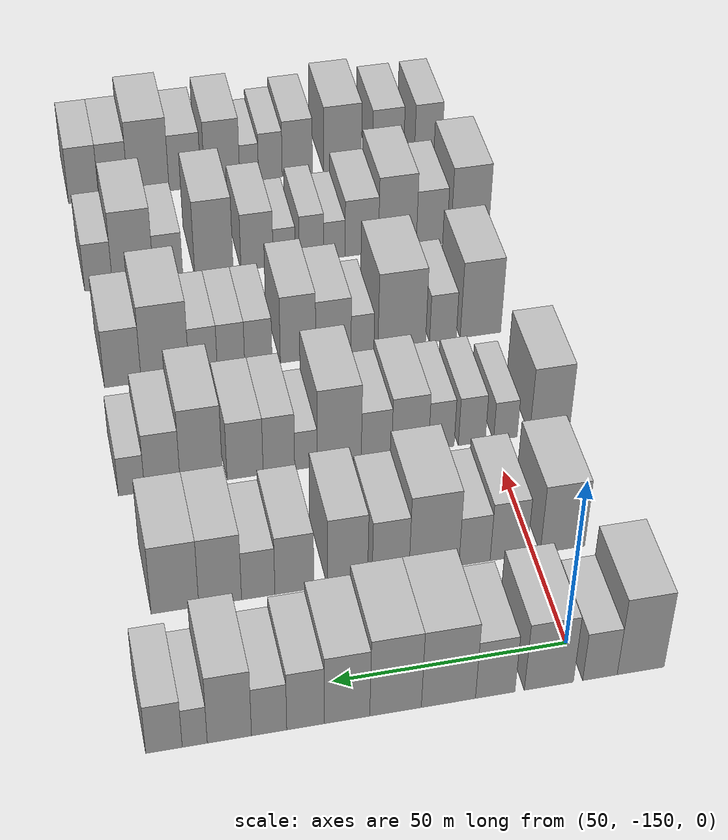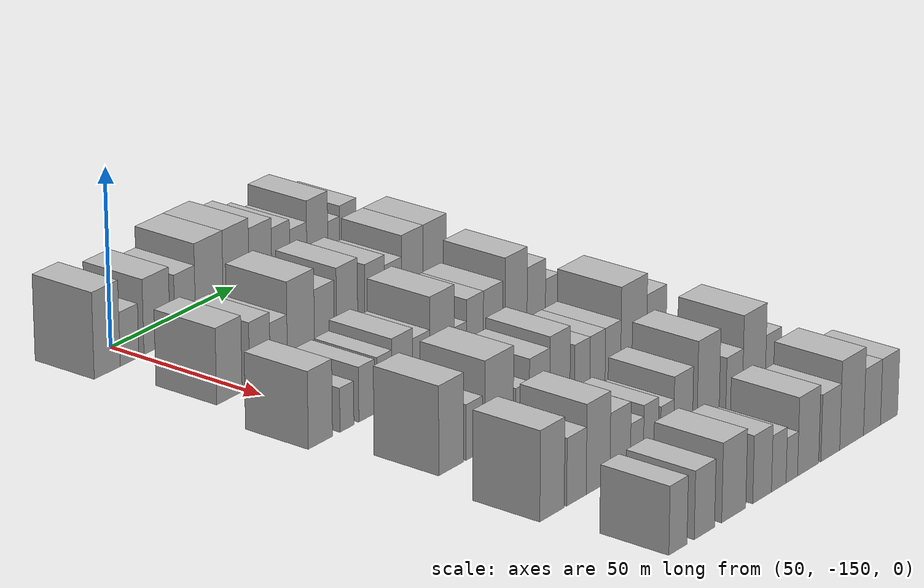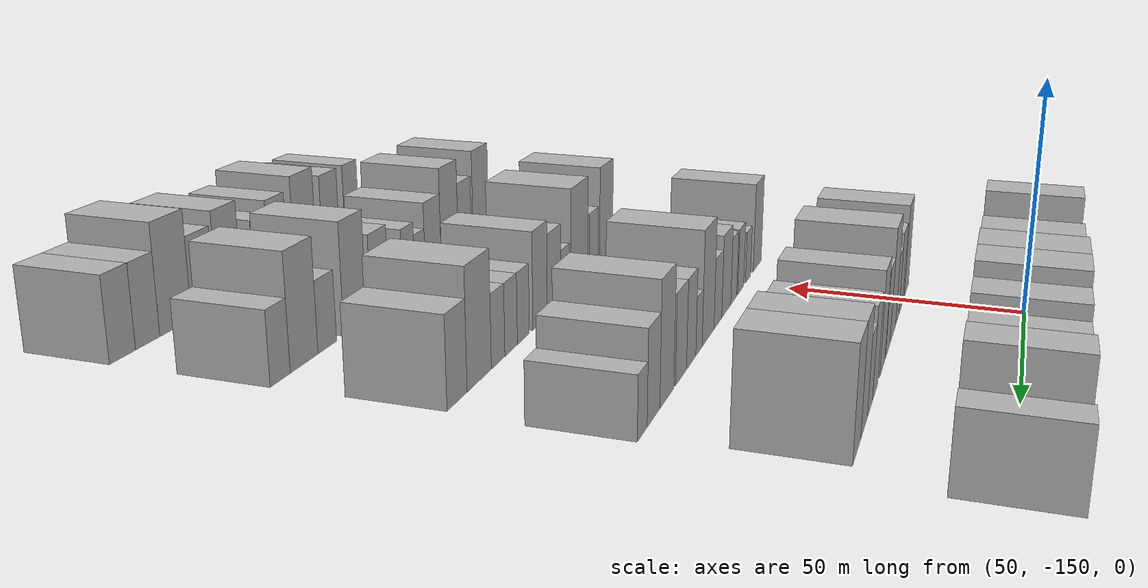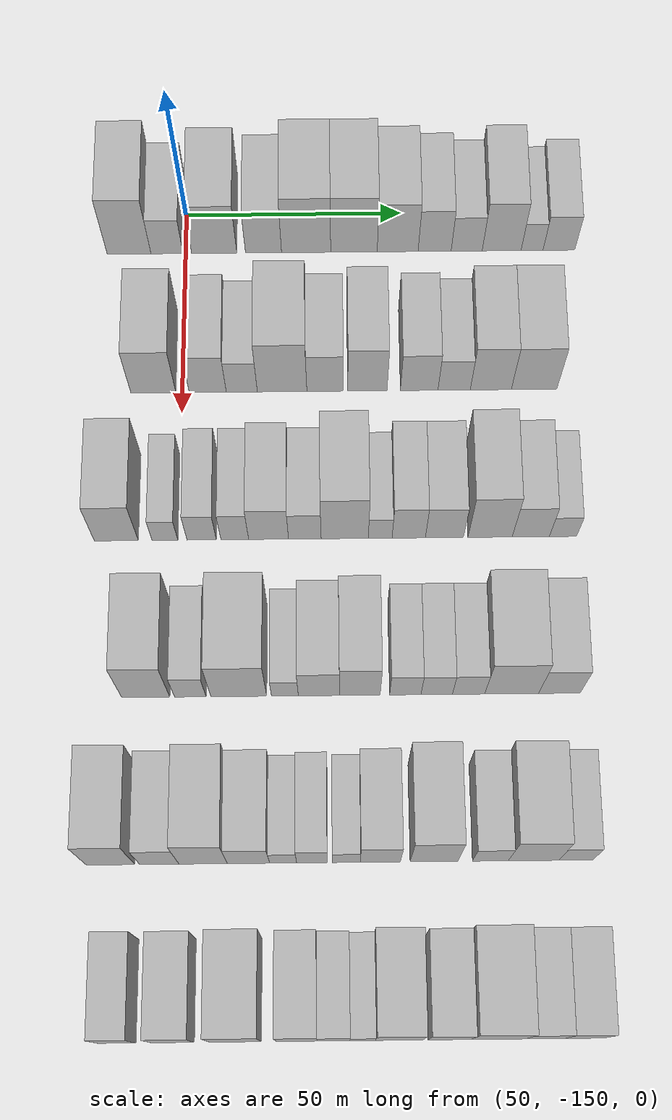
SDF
<sdf version="1.6">
 <world name="default">
  <model name="building_45">
   <static>1</static>
   <pose>50.0000 -163.0519 0 0.000000 0.000000 0.000000</pose>
   <link name="link">
    <pose>0 0 12.00 0 0 0</pose>
    <collision name="collision"><geometry><box><size>20.0000 10.1255 24.0000</size></box></geometry></collision>
    <visual name="visual">
     <cast_shadows>0</cast_shadows>
     <geometry><box><size>20.0000 10.1255 24.0000</size></box></geometry>
     <material>
      <script>
       <uri>model://HANNAS_wall/materials/scripts</uri>
       <uri>model://HANNAS_wall/materials/textures</uri>
       <name>vrc/HANNAS_wall</name>
      </script>
     </material>
    </visual>
   </link>
  </model>
  <model name="building_46">
   <static>1</static>
   <pose>50.0000 -154.2886 0 0.000000 0.000000 0.000000</pose>
   <link name="link">
    <pose>0 0 7.50 0 0 0</pose>
    <collision name="collision"><geometry><box><size>20.0000 7.4011 15.0000</size></box></geometry></collision>
    <visual name="visual">
     <cast_shadows>0</cast_shadows>
     <geometry><box><size>20.0000 7.4011 15.0000</size></box></geometry>
     <material>
      <script>
       <uri>model://HANNAS_wall/materials/scripts</uri>
       <uri>model://HANNAS_wall/materials/textures</uri>
       <name>vrc/HANNAS_wall</name>
      </script>
     </material>
    </visual>
   </link>
  </model>
  <model name="building_47">
   <static>1</static>
   <pose>50.0000 -143.3607 0 0.000000 0.000000 0.000000</pose>
   <link name="link">
    <pose>0 0 10.50 0 0 0</pose>
    <collision name="collision"><geometry><box><size>20.0000 10.4546 21.0000</size></box></geometry></collision>
    <visual name="visual">
     <cast_shadows>0</cast_shadows>
     <geometry><box><size>20.0000 10.4546 21.0000</size></box></geometry>
     <material>
      <script>
       <uri>model://HANNAS_wall/materials/scripts</uri>
       <uri>model://HANNAS_wall/materials/textures</uri>
       <name>vrc/HANNAS_wall</name>
      </script>
     </material>
    </visual>
   </link>
  </model>
  <model name="building_48">
   <static>1</static>
   <pose>50.0000 -131.9639 0 0.000000 0.000000 0.000000</pose>
   <link name="link">
    <pose>0 0 9.00 0 0 0</pose>
    <collision name="collision"><geometry><box><size>20.0000 8.3391 18.0000</size></box></geometry></collision>
    <visual name="visual">
     <cast_shadows>0</cast_shadows>
     <geometry><box><size>20.0000 8.3391 18.0000</size></box></geometry>
     <material>
      <script>
       <uri>model://HANNAS_wall/materials/scripts</uri>
       <uri>model://HANNAS_wall/materials/textures</uri>
       <name>vrc/HANNAS_wall</name>
      </script>
     </material>
    </visual>
   </link>
  </model>
  <model name="building_49">
   <static>1</static>
   <pose>50.0000 -122.1106 0 0.000000 0.000000 0.000000</pose>
   <link name="link">
    <pose>0 0 12.00 0 0 0</pose>
    <collision name="collision"><geometry><box><size>20.0000 11.3675 24.0000</size></box></geometry></collision>
    <visual name="visual">
     <cast_shadows>0</cast_shadows>
     <geometry><box><size>20.0000 11.3675 24.0000</size></box></geometry>
     <material>
      <script>
       <uri>model://HANNAS_wall/materials/scripts</uri>
       <uri>model://HANNAS_wall/materials/textures</uri>
       <name>vrc/HANNAS_wall</name>
      </script>
     </material>
    </visual>
   </link>
  </model>
  <model name="building_50">
   <static>1</static>
   <pose>50.0000 -111.0496 0 0.000000 0.000000 0.000000</pose>
   <link name="link">
    <pose>0 0 12.00 0 0 0</pose>
    <collision name="collision"><geometry><box><size>20.0000 10.7545 24.0000</size></box></geometry></collision>
    <visual name="visual">
     <cast_shadows>0</cast_shadows>
     <geometry><box><size>20.0000 10.7545 24.0000</size></box></geometry>
     <material>
      <script>
       <uri>model://HANNAS_wall/materials/scripts</uri>
       <uri>model://HANNAS_wall/materials/textures</uri>
       <name>vrc/HANNAS_wall</name>
      </script>
     </material>
    </visual>
   </link>
  </model>
  <model name="building_51">
   <static>1</static>
   <pose>50.0000 -100.9385 0 0.000000 0.000000 0.000000</pose>
   <link name="link">
    <pose>0 0 10.50 0 0 0</pose>
    <collision name="collision"><geometry><box><size>20.0000 9.4676 21.0000</size></box></geometry></collision>
    <visual name="visual">
     <cast_shadows>0</cast_shadows>
     <geometry><box><size>20.0000 9.4676 21.0000</size></box></geometry>
     <material>
      <script>
       <uri>model://HANNAS_wall/materials/scripts</uri>
       <uri>model://HANNAS_wall/materials/textures</uri>
       <name>vrc/HANNAS_wall</name>
      </script>
     </material>
    </visual>
   </link>
  </model>
  <model name="building_52">
   <static>1</static>
   <pose>50.0000 -92.3788 0 0.000000 0.000000 0.000000</pose>
   <link name="link">
    <pose>0 0 9.00 0 0 0</pose>
    <collision name="collision"><geometry><box><size>20.0000 7.6519 18.0000</size></box></geometry></collision>
    <visual name="visual">
     <cast_shadows>0</cast_shadows>
     <geometry><box><size>20.0000 7.6519 18.0000</size></box></geometry>
     <material>
      <script>
       <uri>model://HANNAS_wall/materials/scripts</uri>
       <uri>model://HANNAS_wall/materials/textures</uri>
       <name>vrc/HANNAS_wall</name>
      </script>
     </material>
    </visual>
   </link>
  </model>
  <model name="building_53">
   <static>1</static>
   <pose>50.0000 -84.9520 0 0.000000 0.000000 0.000000</pose>
   <link name="link">
    <pose>0 0 7.50 0 0 0</pose>
    <collision name="collision"><geometry><box><size>20.0000 7.2017 15.0000</size></box></geometry></collision>
    <visual name="visual">
     <cast_shadows>0</cast_shadows>
     <geometry><box><size>20.0000 7.2017 15.0000</size></box></geometry>
     <material>
      <script>
       <uri>model://HANNAS_wall/materials/scripts</uri>
       <uri>model://HANNAS_wall/materials/textures</uri>
       <name>vrc/HANNAS_wall</name>
      </script>
     </material>
    </visual>
   </link>
  </model>
  <model name="building_54">
   <static>1</static>
   <pose>50.0000 -76.8477 0 0.000000 0.000000 0.000000</pose>
   <link name="link">
    <pose>0 0 10.50 0 0 0</pose>
    <collision name="collision"><geometry><box><size>20.0000 9.0068 21.0000</size></box></geometry></collision>
    <visual name="visual">
     <cast_shadows>0</cast_shadows>
     <geometry><box><size>20.0000 9.0068 21.0000</size></box></geometry>
     <material>
      <script>
       <uri>model://HANNAS_wall/materials/scripts</uri>
       <uri>model://HANNAS_wall/materials/textures</uri>
       <name>vrc/HANNAS_wall</name>
      </script>
     </material>
    </visual>
   </link>
  </model>
  <model name="building_55">
   <static>1</static>
   <pose>50.0000 -69.8082 0 0.000000 0.000000 0.000000</pose>
   <link name="link">
    <pose>0 0 6.00 0 0 0</pose>
    <collision name="collision"><geometry><box><size>20.0000 5.0724 12.0000</size></box></geometry></collision>
    <visual name="visual">
     <cast_shadows>0</cast_shadows>
     <geometry><box><size>20.0000 5.0724 12.0000</size></box></geometry>
     <material>
      <script>
       <uri>model://HANNAS_wall/materials/scripts</uri>
       <uri>model://HANNAS_wall/materials/textures</uri>
       <name>vrc/HANNAS_wall</name>
      </script>
     </material>
    </visual>
   </link>
  </model>
  <model name="building_56">
   <static>1</static>
   <pose>50.0000 -63.5897 0 0.000000 0.000000 0.000000</pose>
   <link name="link">
    <pose>0 0 7.50 0 0 0</pose>
    <collision name="collision"><geometry><box><size>20.0000 7.3645 15.0000</size></box></geometry></collision>
    <visual name="visual">
     <cast_shadows>0</cast_shadows>
     <geometry><box><size>20.0000 7.3645 15.0000</size></box></geometry>
     <material>
      <script>
       <uri>model://HANNAS_wall/materials/scripts</uri>
       <uri>model://HANNAS_wall/materials/textures</uri>
       <name>vrc/HANNAS_wall</name>
      </script>
     </material>
    </visual>
   </link>
  </model>
  <model name="building_176">
   <static>1</static>
   <pose>85.0000 -156.5332 0 0.000000 0.000000 0.000000</pose>
   <link name="link">
    <pose>0 0 10.50 0 0 0</pose>
    <collision name="collision"><geometry><box><size>20.0000 10.1084 21.0000</size></box></geometry></collision>
    <visual name="visual">
     <cast_shadows>0</cast_shadows>
     <geometry><box><size>20.0000 10.1084 21.0000</size></box></geometry>
     <material>
      <script>
       <uri>model://HANNAS_wall/materials/scripts</uri>
       <uri>model://HANNAS_wall/materials/textures</uri>
       <name>vrc/HANNAS_wall</name>
      </script>
     </material>
    </visual>
   </link>
  </model>
  <model name="building_177">
   <static>1</static>
   <pose>85.0000 -144.3210 0 0.000000 0.000000 0.000000</pose>
   <link name="link">
    <pose>0 0 9.00 0 0 0</pose>
    <collision name="collision"><geometry><box><size>20.0000 8.3161 18.0000</size></box></geometry></collision>
    <visual name="visual">
     <cast_shadows>0</cast_shadows>
     <geometry><box><size>20.0000 8.3161 18.0000</size></box></geometry>
     <material>
      <script>
       <uri>model://HANNAS_wall/materials/scripts</uri>
       <uri>model://HANNAS_wall/materials/textures</uri>
       <name>vrc/HANNAS_wall</name>
      </script>
     </material>
    </visual>
   </link>
  </model>
  <model name="building_178">
   <static>1</static>
   <pose>85.0000 -136.6722 0 0.000000 0.000000 0.000000</pose>
   <link name="link">
    <pose>0 0 7.50 0 0 0</pose>
    <collision name="collision"><geometry><box><size>20.0000 6.9815 15.0000</size></box></geometry></collision>
    <visual name="visual">
     <cast_shadows>0</cast_shadows>
     <geometry><box><size>20.0000 6.9815 15.0000</size></box></geometry>
     <material>
      <script>
       <uri>model://HANNAS_wall/materials/scripts</uri>
       <uri>model://HANNAS_wall/materials/textures</uri>
       <name>vrc/HANNAS_wall</name>
      </script>
     </material>
    </visual>
   </link>
  </model>
  <model name="building_179">
   <static>1</static>
   <pose>85.0000 -127.6199 0 0.000000 0.000000 0.000000</pose>
   <link name="link">
    <pose>0 0 12.00 0 0 0</pose>
    <collision name="collision"><geometry><box><size>20.0000 11.1229 24.0000</size></box></geometry></collision>
    <visual name="visual">
     <cast_shadows>0</cast_shadows>
     <geometry><box><size>20.0000 11.1229 24.0000</size></box></geometry>
     <material>
      <script>
       <uri>model://HANNAS_wall/materials/scripts</uri>
       <uri>model://HANNAS_wall/materials/textures</uri>
       <name>vrc/HANNAS_wall</name>
      </script>
     </material>
    </visual>
   </link>
  </model>
  <model name="building_180">
   <static>1</static>
   <pose>85.0000 -117.9716 0 0.000000 0.000000 0.000000</pose>
   <link name="link">
    <pose>0 0 9.00 0 0 0</pose>
    <collision name="collision"><geometry><box><size>20.0000 8.1738 18.0000</size></box></geometry></collision>
    <visual name="visual">
     <cast_shadows>0</cast_shadows>
     <geometry><box><size>20.0000 8.1738 18.0000</size></box></geometry>
     <material>
      <script>
       <uri>model://HANNAS_wall/materials/scripts</uri>
       <uri>model://HANNAS_wall/materials/textures</uri>
       <name>vrc/HANNAS_wall</name>
      </script>
     </material>
    </visual>
   </link>
  </model>
  <model name="building_181">
   <static>1</static>
   <pose>85.0000 -108.4651 0 0.000000 0.000000 0.000000</pose>
   <link name="link">
    <pose>0 0 10.50 0 0 0</pose>
    <collision name="collision"><geometry><box><size>20.0000 8.8392 21.0000</size></box></geometry></collision>
    <visual name="visual">
     <cast_shadows>0</cast_shadows>
     <geometry><box><size>20.0000 8.8392 21.0000</size></box></geometry>
     <material>
      <script>
       <uri>model://HANNAS_wall/materials/scripts</uri>
       <uri>model://HANNAS_wall/materials/textures</uri>
       <name>vrc/HANNAS_wall</name>
      </script>
     </material>
    </visual>
   </link>
  </model>
  <model name="building_182">
   <static>1</static>
   <pose>85.0000 -96.8201 0 0.000000 0.000000 0.000000</pose>
   <link name="link">
    <pose>0 0 9.00 0 0 0</pose>
    <collision name="collision"><geometry><box><size>20.0000 8.4508 18.0000</size></box></geometry></collision>
    <visual name="visual">
     <cast_shadows>0</cast_shadows>
     <geometry><box><size>20.0000 8.4508 18.0000</size></box></geometry>
     <material>
      <script>
       <uri>model://HANNAS_wall/materials/scripts</uri>
       <uri>model://HANNAS_wall/materials/textures</uri>
       <name>vrc/HANNAS_wall</name>
      </script>
     </material>
    </visual>
   </link>
  </model>
  <model name="building_183">
   <static>1</static>
   <pose>85.0000 -88.9683 0 0.000000 0.000000 0.000000</pose>
   <link name="link">
    <pose>0 0 7.50 0 0 0</pose>
    <collision name="collision"><geometry><box><size>20.0000 7.2527 15.0000</size></box></geometry></collision>
    <visual name="visual">
     <cast_shadows>0</cast_shadows>
     <geometry><box><size>20.0000 7.2527 15.0000</size></box></geometry>
     <material>
      <script>
       <uri>model://HANNAS_wall/materials/scripts</uri>
       <uri>model://HANNAS_wall/materials/textures</uri>
       <name>vrc/HANNAS_wall</name>
      </script>
     </material>
    </visual>
   </link>
  </model>
  <model name="building_184">
   <static>1</static>
   <pose>85.0000 -80.7210 0 0.000000 0.000000 0.000000</pose>
   <link name="link">
    <pose>0 0 10.50 0 0 0</pose>
    <collision name="collision"><geometry><box><size>20.0000 9.2419 21.0000</size></box></geometry></collision>
    <visual name="visual">
     <cast_shadows>0</cast_shadows>
     <geometry><box><size>20.0000 9.2419 21.0000</size></box></geometry>
     <material>
      <script>
       <uri>model://HANNAS_wall/materials/scripts</uri>
       <uri>model://HANNAS_wall/materials/textures</uri>
       <name>vrc/HANNAS_wall</name>
      </script>
     </material>
    </visual>
   </link>
  </model>
  <model name="building_185">
   <static>1</static>
   <pose>85.0000 -70.9813 0 0.000000 0.000000 0.000000</pose>
   <link name="link">
    <pose>0 0 10.50 0 0 0</pose>
    <collision name="collision"><geometry><box><size>20.0000 10.2375 21.0000</size></box></geometry></collision>
    <visual name="visual">
     <cast_shadows>0</cast_shadows>
     <geometry><box><size>20.0000 10.2375 21.0000</size></box></geometry>
     <material>
      <script>
       <uri>model://HANNAS_wall/materials/scripts</uri>
       <uri>model://HANNAS_wall/materials/textures</uri>
       <name>vrc/HANNAS_wall</name>
      </script>
     </material>
    </visual>
   </link>
  </model>
  <model name="building_301">
   <static>1</static>
   <pose>120.0000 -163.7072 0 0.000000 0.000000 0.000000</pose>
   <link name="link">
    <pose>0 0 10.50 0 0 0</pose>
    <collision name="collision"><geometry><box><size>20.0000 9.5948 21.0000</size></box></geometry></collision>
    <visual name="visual">
     <cast_shadows>0</cast_shadows>
     <geometry><box><size>20.0000 9.5948 21.0000</size></box></geometry>
     <material>
      <script>
       <uri>model://HANNAS_wall/materials/scripts</uri>
       <uri>model://HANNAS_wall/materials/textures</uri>
       <name>vrc/HANNAS_wall</name>
      </script>
     </material>
    </visual>
   </link>
  </model>
  <model name="building_302">
   <static>1</static>
   <pose>120.0000 -153.1015 0 0.000000 0.000000 0.000000</pose>
   <link name="link">
    <pose>0 0 6.00 0 0 0</pose>
    <collision name="collision"><geometry><box><size>20.0000 5.6167 12.0000</size></box></geometry></collision>
    <visual name="visual">
     <cast_shadows>0</cast_shadows>
     <geometry><box><size>20.0000 5.6167 12.0000</size></box></geometry>
     <material>
      <script>
       <uri>model://HANNAS_wall/materials/scripts</uri>
       <uri>model://HANNAS_wall/materials/textures</uri>
       <name>vrc/HANNAS_wall</name>
      </script>
     </material>
    </visual>
   </link>
  </model>
  <model name="building_303">
   <static>1</static>
   <pose>120.0000 -145.1016 0 0.000000 0.000000 0.000000</pose>
   <link name="link">
    <pose>0 0 7.50 0 0 0</pose>
    <collision name="collision"><geometry><box><size>20.0000 6.3832 15.0000</size></box></geometry></collision>
    <visual name="visual">
     <cast_shadows>0</cast_shadows>
     <geometry><box><size>20.0000 6.3832 15.0000</size></box></geometry>
     <material>
      <script>
       <uri>model://HANNAS_wall/materials/scripts</uri>
       <uri>model://HANNAS_wall/materials/textures</uri>
       <name>vrc/HANNAS_wall</name>
      </script>
     </material>
    </visual>
   </link>
  </model>
  <model name="building_304">
   <static>1</static>
   <pose>120.0000 -137.8910 0 0.000000 0.000000 0.000000</pose>
   <link name="link">
    <pose>0 0 7.50 0 0 0</pose>
    <collision name="collision"><geometry><box><size>20.0000 6.0380 15.0000</size></box></geometry></collision>
    <visual name="visual">
     <cast_shadows>0</cast_shadows>
     <geometry><box><size>20.0000 6.0380 15.0000</size></box></geometry>
     <material>
      <script>
       <uri>model://HANNAS_wall/materials/scripts</uri>
       <uri>model://HANNAS_wall/materials/textures</uri>
       <name>vrc/HANNAS_wall</name>
      </script>
     </material>
    </visual>
   </link>
  </model>
  <model name="building_305">
   <static>1</static>
   <pose>120.0000 -130.5259 0 0.000000 0.000000 0.000000</pose>
   <link name="link">
    <pose>0 0 9.00 0 0 0</pose>
    <collision name="collision"><geometry><box><size>20.0000 8.6922 18.0000</size></box></geometry></collision>
    <visual name="visual">
     <cast_shadows>0</cast_shadows>
     <geometry><box><size>20.0000 8.6922 18.0000</size></box></geometry>
     <material>
      <script>
       <uri>model://HANNAS_wall/materials/scripts</uri>
       <uri>model://HANNAS_wall/materials/textures</uri>
       <name>vrc/HANNAS_wall</name>
      </script>
     </material>
    </visual>
   </link>
  </model>
  <model name="building_306">
   <static>1</static>
   <pose>120.0000 -122.6251 0 0.000000 0.000000 0.000000</pose>
   <link name="link">
    <pose>0 0 7.50 0 0 0</pose>
    <collision name="collision"><geometry><box><size>20.0000 7.1094 15.0000</size></box></geometry></collision>
    <visual name="visual">
     <cast_shadows>0</cast_shadows>
     <geometry><box><size>20.0000 7.1094 15.0000</size></box></geometry>
     <material>
      <script>
       <uri>model://HANNAS_wall/materials/scripts</uri>
       <uri>model://HANNAS_wall/materials/textures</uri>
       <name>vrc/HANNAS_wall</name>
      </script>
     </material>
    </visual>
   </link>
  </model>
  <model name="building_307">
   <static>1</static>
   <pose>120.0000 -113.9349 0 0.000000 0.000000 0.000000</pose>
   <link name="link">
    <pose>0 0 12.00 0 0 0</pose>
    <collision name="collision"><geometry><box><size>20.0000 10.2711 24.0000</size></box></geometry></collision>
    <visual name="visual">
     <cast_shadows>0</cast_shadows>
     <geometry><box><size>20.0000 10.2711 24.0000</size></box></geometry>
     <material>
      <script>
       <uri>model://HANNAS_wall/materials/scripts</uri>
       <uri>model://HANNAS_wall/materials/textures</uri>
       <name>vrc/HANNAS_wall</name>
      </script>
     </material>
    </visual>
   </link>
  </model>
  <model name="building_308">
   <static>1</static>
   <pose>120.0000 -106.2058 0 0.000000 0.000000 0.000000</pose>
   <link name="link">
    <pose>0 0 6.00 0 0 0</pose>
    <collision name="collision"><geometry><box><size>20.0000 5.1871 12.0000</size></box></geometry></collision>
    <visual name="visual">
     <cast_shadows>0</cast_shadows>
     <geometry><box><size>20.0000 5.1871 12.0000</size></box></geometry>
     <material>
      <script>
       <uri>model://HANNAS_wall/materials/scripts</uri>
       <uri>model://HANNAS_wall/materials/textures</uri>
       <name>vrc/HANNAS_wall</name>
      </script>
     </material>
    </visual>
   </link>
  </model>
  <model name="building_309">
   <static>1</static>
   <pose>120.0000 -99.9791 0 0.000000 0.000000 0.000000</pose>
   <link name="link">
    <pose>0 0 9.00 0 0 0</pose>
    <collision name="collision"><geometry><box><size>20.0000 7.2662 18.0000</size></box></geometry></collision>
    <visual name="visual">
     <cast_shadows>0</cast_shadows>
     <geometry><box><size>20.0000 7.2662 18.0000</size></box></geometry>
     <material>
      <script>
       <uri>model://HANNAS_wall/materials/scripts</uri>
       <uri>model://HANNAS_wall/materials/textures</uri>
       <name>vrc/HANNAS_wall</name>
      </script>
     </material>
    </visual>
   </link>
  </model>
  <model name="building_310">
   <static>1</static>
   <pose>120.0000 -92.1990 0 0.000000 0.000000 0.000000</pose>
   <link name="link">
    <pose>0 0 9.00 0 0 0</pose>
    <collision name="collision"><geometry><box><size>20.0000 8.2940 18.0000</size></box></geometry></collision>
    <visual name="visual">
     <cast_shadows>0</cast_shadows>
     <geometry><box><size>20.0000 8.2940 18.0000</size></box></geometry>
     <material>
      <script>
       <uri>model://HANNAS_wall/materials/scripts</uri>
       <uri>model://HANNAS_wall/materials/textures</uri>
       <name>vrc/HANNAS_wall</name>
      </script>
     </material>
    </visual>
   </link>
  </model>
  <model name="building_311">
   <static>1</static>
   <pose>120.0000 -82.2319 0 0.000000 0.000000 0.000000</pose>
   <link name="link">
    <pose>0 0 12.00 0 0 0</pose>
    <collision name="collision"><geometry><box><size>20.0000 9.6401 24.0000</size></box></geometry></collision>
    <visual name="visual">
     <cast_shadows>0</cast_shadows>
     <geometry><box><size>20.0000 9.6401 24.0000</size></box></geometry>
     <material>
      <script>
       <uri>model://HANNAS_wall/materials/scripts</uri>
       <uri>model://HANNAS_wall/materials/textures</uri>
       <name>vrc/HANNAS_wall</name>
      </script>
     </material>
    </visual>
   </link>
  </model>
  <model name="building_312">
   <static>1</static>
   <pose>120.0000 -73.3516 0 0.000000 0.000000 0.000000</pose>
   <link name="link">
    <pose>0 0 9.00 0 0 0</pose>
    <collision name="collision"><geometry><box><size>20.0000 8.1205 18.0000</size></box></geometry></collision>
    <visual name="visual">
     <cast_shadows>0</cast_shadows>
     <geometry><box><size>20.0000 8.1205 18.0000</size></box></geometry>
     <material>
      <script>
       <uri>model://HANNAS_wall/materials/scripts</uri>
       <uri>model://HANNAS_wall/materials/textures</uri>
       <name>vrc/HANNAS_wall</name>
      </script>
     </material>
    </visual>
   </link>
  </model>
  <model name="building_313">
   <static>1</static>
   <pose>120.0000 -66.3173 0 0.000000 0.000000 0.000000</pose>
   <link name="link">
    <pose>0 0 6.00 0 0 0</pose>
    <collision name="collision"><geometry><box><size>20.0000 5.9482 12.0000</size></box></geometry></collision>
    <visual name="visual">
     <cast_shadows>0</cast_shadows>
     <geometry><box><size>20.0000 5.9482 12.0000</size></box></geometry>
     <material>
      <script>
       <uri>model://HANNAS_wall/materials/scripts</uri>
       <uri>model://HANNAS_wall/materials/textures</uri>
       <name>vrc/HANNAS_wall</name>
      </script>
     </material>
    </visual>
   </link>
  </model>
  <model name="building_430">
   <static>1</static>
   <pose>155.0000 -156.3318 0 0.000000 0.000000 0.000000</pose>
   <link name="link">
    <pose>0 0 12.00 0 0 0</pose>
    <collision name="collision"><geometry><box><size>20.0000 10.1434 24.0000</size></box></geometry></collision>
    <visual name="visual">
     <cast_shadows>0</cast_shadows>
     <geometry><box><size>20.0000 10.1434 24.0000</size></box></geometry>
     <material>
      <script>
       <uri>model://HANNAS_wall/materials/scripts</uri>
       <uri>model://HANNAS_wall/materials/textures</uri>
       <name>vrc/HANNAS_wall</name>
      </script>
     </material>
    </visual>
   </link>
  </model>
  <model name="building_431">
   <static>1</static>
   <pose>155.0000 -146.9319 0 0.000000 0.000000 0.000000</pose>
   <link name="link">
    <pose>0 0 7.50 0 0 0</pose>
    <collision name="collision"><geometry><box><size>20.0000 6.6564 15.0000</size></box></geometry></collision>
    <visual name="visual">
     <cast_shadows>0</cast_shadows>
     <geometry><box><size>20.0000 6.6564 15.0000</size></box></geometry>
     <material>
      <script>
       <uri>model://HANNAS_wall/materials/scripts</uri>
       <uri>model://HANNAS_wall/materials/textures</uri>
       <name>vrc/HANNAS_wall</name>
      </script>
     </material>
    </visual>
   </link>
  </model>
  <model name="building_432">
   <static>1</static>
   <pose>155.0000 -136.6909 0 0.000000 0.000000 0.000000</pose>
   <link name="link">
    <pose>0 0 12.00 0 0 0</pose>
    <collision name="collision"><geometry><box><size>20.0000 11.8256 24.0000</size></box></geometry></collision>
    <visual name="visual">
     <cast_shadows>0</cast_shadows>
     <geometry><box><size>20.0000 11.8256 24.0000</size></box></geometry>
     <material>
      <script>
       <uri>model://HANNAS_wall/materials/scripts</uri>
       <uri>model://HANNAS_wall/materials/textures</uri>
       <name>vrc/HANNAS_wall</name>
      </script>
     </material>
    </visual>
   </link>
  </model>
  <model name="building_433">
   <static>1</static>
   <pose>155.0000 -126.9441 0 0.000000 0.000000 0.000000</pose>
   <link name="link">
    <pose>0 0 6.00 0 0 0</pose>
    <collision name="collision"><geometry><box><size>20.0000 5.6680 12.0000</size></box></geometry></collision>
    <visual name="visual">
     <cast_shadows>0</cast_shadows>
     <geometry><box><size>20.0000 5.6680 12.0000</size></box></geometry>
     <material>
      <script>
       <uri>model://HANNAS_wall/materials/scripts</uri>
       <uri>model://HANNAS_wall/materials/textures</uri>
       <name>vrc/HANNAS_wall</name>
      </script>
     </material>
    </visual>
   </link>
  </model>
  <model name="building_434">
   <static>1</static>
   <pose>155.0000 -119.7789 0 0.000000 0.000000 0.000000</pose>
   <link name="link">
    <pose>0 0 9.00 0 0 0</pose>
    <collision name="collision"><geometry><box><size>20.0000 8.6622 18.0000</size></box></geometry></collision>
    <visual name="visual">
     <cast_shadows>0</cast_shadows>
     <geometry><box><size>20.0000 8.6622 18.0000</size></box></geometry>
     <material>
      <script>
       <uri>model://HANNAS_wall/materials/scripts</uri>
       <uri>model://HANNAS_wall/materials/textures</uri>
       <name>vrc/HANNAS_wall</name>
      </script>
     </material>
    </visual>
   </link>
  </model>
  <model name="building_435">
   <static>1</static>
   <pose>155.0000 -111.1372 0 0.000000 0.000000 0.000000</pose>
   <link name="link">
    <pose>0 0 10.50 0 0 0</pose>
    <collision name="collision"><geometry><box><size>20.0000 8.6212 21.0000</size></box></geometry></collision>
    <visual name="visual">
     <cast_shadows>0</cast_shadows>
     <geometry><box><size>20.0000 8.6212 21.0000</size></box></geometry>
     <material>
      <script>
       <uri>model://HANNAS_wall/materials/scripts</uri>
       <uri>model://HANNAS_wall/materials/textures</uri>
       <name>vrc/HANNAS_wall</name>
      </script>
     </material>
    </visual>
   </link>
  </model>
  <model name="building_436">
   <static>1</static>
   <pose>155.0000 -101.5107 0 0.000000 0.000000 0.000000</pose>
   <link name="link">
    <pose>0 0 7.50 0 0 0</pose>
    <collision name="collision"><geometry><box><size>20.0000 6.6318 15.0000</size></box></geometry></collision>
    <visual name="visual">
     <cast_shadows>0</cast_shadows>
     <geometry><box><size>20.0000 6.6318 15.0000</size></box></geometry>
     <material>
      <script>
       <uri>model://HANNAS_wall/materials/scripts</uri>
       <uri>model://HANNAS_wall/materials/textures</uri>
       <name>vrc/HANNAS_wall</name>
      </script>
     </material>
    </visual>
   </link>
  </model>
  <model name="building_437">
   <static>1</static>
   <pose>155.0000 -94.8767 0 0.000000 0.000000 0.000000</pose>
   <link name="link">
    <pose>0 0 7.50 0 0 0</pose>
    <collision name="collision"><geometry><box><size>20.0000 6.6363 15.0000</size></box></geometry></collision>
    <visual name="visual">
     <cast_shadows>0</cast_shadows>
     <geometry><box><size>20.0000 6.6363 15.0000</size></box></geometry>
     <material>
      <script>
       <uri>model://HANNAS_wall/materials/scripts</uri>
       <uri>model://HANNAS_wall/materials/textures</uri>
       <name>vrc/HANNAS_wall</name>
      </script>
     </material>
    </visual>
   </link>
  </model>
  <model name="building_438">
   <static>1</static>
   <pose>155.0000 -88.1443 0 0.000000 0.000000 0.000000</pose>
   <link name="link">
    <pose>0 0 7.50 0 0 0</pose>
    <collision name="collision"><geometry><box><size>20.0000 6.8285 15.0000</size></box></geometry></collision>
    <visual name="visual">
     <cast_shadows>0</cast_shadows>
     <geometry><box><size>20.0000 6.8285 15.0000</size></box></geometry>
     <material>
      <script>
       <uri>model://HANNAS_wall/materials/scripts</uri>
       <uri>model://HANNAS_wall/materials/textures</uri>
       <name>vrc/HANNAS_wall</name>
      </script>
     </material>
    </visual>
   </link>
  </model>
  <model name="building_439">
   <static>1</static>
   <pose>155.0000 -79.0016 0 0.000000 0.000000 0.000000</pose>
   <link name="link">
    <pose>0 0 12.00 0 0 0</pose>
    <collision name="collision"><geometry><box><size>20.0000 11.4570 24.0000</size></box></geometry></collision>
    <visual name="visual">
     <cast_shadows>0</cast_shadows>
     <geometry><box><size>20.0000 11.4570 24.0000</size></box></geometry>
     <material>
      <script>
       <uri>model://HANNAS_wall/materials/scripts</uri>
       <uri>model://HANNAS_wall/materials/textures</uri>
       <name>vrc/HANNAS_wall</name>
      </script>
     </material>
    </visual>
   </link>
  </model>
  <model name="building_440">
   <static>1</static>
   <pose>155.0000 -68.8798 0 0.000000 0.000000 0.000000</pose>
   <link name="link">
    <pose>0 0 9.00 0 0 0</pose>
    <collision name="collision"><geometry><box><size>20.0000 8.7865 18.0000</size></box></geometry></collision>
    <visual name="visual">
     <cast_shadows>0</cast_shadows>
     <geometry><box><size>20.0000 8.7865 18.0000</size></box></geometry>
     <material>
      <script>
       <uri>model://HANNAS_wall/materials/scripts</uri>
       <uri>model://HANNAS_wall/materials/textures</uri>
       <name>vrc/HANNAS_wall</name>
      </script>
     </material>
    </visual>
   </link>
  </model>
  <model name="building_549">
   <static>1</static>
   <pose>190.0000 -162.5717 0 0.000000 0.000000 0.000000</pose>
   <link name="link">
    <pose>0 0 12.00 0 0 0</pose>
    <collision name="collision"><geometry><box><size>20.0000 9.9280 24.0000</size></box></geometry></collision>
    <visual name="visual">
     <cast_shadows>0</cast_shadows>
     <geometry><box><size>20.0000 9.9280 24.0000</size></box></geometry>
     <material>
      <script>
       <uri>model://HANNAS_wall/materials/scripts</uri>
       <uri>model://HANNAS_wall/materials/textures</uri>
       <name>vrc/HANNAS_wall</name>
      </script>
     </material>
    </visual>
   </link>
  </model>
  <model name="building_550">
   <static>1</static>
   <pose>190.0000 -152.5874 0 0.000000 0.000000 0.000000</pose>
   <link name="link">
    <pose>0 0 9.00 0 0 0</pose>
    <collision name="collision"><geometry><box><size>20.0000 8.0407 18.0000</size></box></geometry></collision>
    <visual name="visual">
     <cast_shadows>0</cast_shadows>
     <geometry><box><size>20.0000 8.0407 18.0000</size></box></geometry>
     <material>
      <script>
       <uri>model://HANNAS_wall/materials/scripts</uri>
       <uri>model://HANNAS_wall/materials/textures</uri>
       <name>vrc/HANNAS_wall</name>
      </script>
     </material>
    </visual>
   </link>
  </model>
  <model name="building_551">
   <static>1</static>
   <pose>190.0000 -143.6211 0 0.000000 0.000000 0.000000</pose>
   <link name="link">
    <pose>0 0 12.00 0 0 0</pose>
    <collision name="collision"><geometry><box><size>20.0000 9.8918 24.0000</size></box></geometry></collision>
    <visual name="visual">
     <cast_shadows>0</cast_shadows>
     <geometry><box><size>20.0000 9.8918 24.0000</size></box></geometry>
     <material>
      <script>
       <uri>model://HANNAS_wall/materials/scripts</uri>
       <uri>model://HANNAS_wall/materials/textures</uri>
       <name>vrc/HANNAS_wall</name>
      </script>
     </material>
    </visual>
   </link>
  </model>
  <model name="building_552">
   <static>1</static>
   <pose>190.0000 -134.3497 0 0.000000 0.000000 0.000000</pose>
   <link name="link">
    <pose>0 0 9.00 0 0 0</pose>
    <collision name="collision"><geometry><box><size>20.0000 8.6511 18.0000</size></box></geometry></collision>
    <visual name="visual">
     <cast_shadows>0</cast_shadows>
     <geometry><box><size>20.0000 8.6511 18.0000</size></box></geometry>
     <material>
      <script>
       <uri>model://HANNAS_wall/materials/scripts</uri>
       <uri>model://HANNAS_wall/materials/textures</uri>
       <name>vrc/HANNAS_wall</name>
      </script>
     </material>
    </visual>
   </link>
  </model>
  <model name="building_553">
   <static>1</static>
   <pose>190.0000 -127.2659 0 0.000000 0.000000 0.000000</pose>
   <link name="link">
    <pose>0 0 6.00 0 0 0</pose>
    <collision name="collision"><geometry><box><size>20.0000 5.5165 12.0000</size></box></geometry></collision>
    <visual name="visual">
     <cast_shadows>0</cast_shadows>
     <geometry><box><size>20.0000 5.5165 12.0000</size></box></geometry>
     <material>
      <script>
       <uri>model://HANNAS_wall/materials/scripts</uri>
       <uri>model://HANNAS_wall/materials/textures</uri>
       <name>vrc/HANNAS_wall</name>
      </script>
     </material>
    </visual>
   </link>
  </model>
  <model name="building_554">
   <static>1</static>
   <pose>190.0000 -121.3476 0 0.000000 0.000000 0.000000</pose>
   <link name="link">
    <pose>0 0 7.50 0 0 0</pose>
    <collision name="collision"><geometry><box><size>20.0000 6.3202 15.0000</size></box></geometry></collision>
    <visual name="visual">
     <cast_shadows>0</cast_shadows>
     <geometry><box><size>20.0000 6.3202 15.0000</size></box></geometry>
     <material>
      <script>
       <uri>model://HANNAS_wall/materials/scripts</uri>
       <uri>model://HANNAS_wall/materials/textures</uri>
       <name>vrc/HANNAS_wall</name>
      </script>
     </material>
    </visual>
   </link>
  </model>
  <model name="building_555">
   <static>1</static>
   <pose>190.0000 -114.3541 0 0.000000 0.000000 0.000000</pose>
   <link name="link">
    <pose>0 0 6.00 0 0 0</pose>
    <collision name="collision"><geometry><box><size>20.0000 5.6668 12.0000</size></box></geometry></collision>
    <visual name="visual">
     <cast_shadows>0</cast_shadows>
     <geometry><box><size>20.0000 5.6668 12.0000</size></box></geometry>
     <material>
      <script>
       <uri>model://HANNAS_wall/materials/scripts</uri>
       <uri>model://HANNAS_wall/materials/textures</uri>
       <name>vrc/HANNAS_wall</name>
      </script>
     </material>
    </visual>
   </link>
  </model>
  <model name="building_556">
   <static>1</static>
   <pose>190.0000 -107.4052 0 0.000000 0.000000 0.000000</pose>
   <link name="link">
    <pose>0 0 9.00 0 0 0</pose>
    <collision name="collision"><geometry><box><size>20.0000 8.2309 18.0000</size></box></geometry></collision>
    <visual name="visual">
     <cast_shadows>0</cast_shadows>
     <geometry><box><size>20.0000 8.2309 18.0000</size></box></geometry>
     <material>
      <script>
       <uri>model://HANNAS_wall/materials/scripts</uri>
       <uri>model://HANNAS_wall/materials/textures</uri>
       <name>vrc/HANNAS_wall</name>
      </script>
     </material>
    </visual>
   </link>
  </model>
  <model name="building_557">
   <static>1</static>
   <pose>190.0000 -96.4112 0 0.000000 0.000000 0.000000</pose>
   <link name="link">
    <pose>0 0 12.00 0 0 0</pose>
    <collision name="collision"><geometry><box><size>20.0000 9.7571 24.0000</size></box></geometry></collision>
    <visual name="visual">
     <cast_shadows>0</cast_shadows>
     <geometry><box><size>20.0000 9.7571 24.0000</size></box></geometry>
     <material>
      <script>
       <uri>model://HANNAS_wall/materials/scripts</uri>
       <uri>model://HANNAS_wall/materials/textures</uri>
       <name>vrc/HANNAS_wall</name>
      </script>
     </material>
    </visual>
   </link>
  </model>
  <model name="building_558">
   <static>1</static>
   <pose>190.0000 -84.8571 0 0.000000 0.000000 0.000000</pose>
   <link name="link">
    <pose>0 0 7.50 0 0 0</pose>
    <collision name="collision"><geometry><box><size>20.0000 7.3512 15.0000</size></box></geometry></collision>
    <visual name="visual">
     <cast_shadows>0</cast_shadows>
     <geometry><box><size>20.0000 7.3512 15.0000</size></box></geometry>
     <material>
      <script>
       <uri>model://HANNAS_wall/materials/scripts</uri>
       <uri>model://HANNAS_wall/materials/textures</uri>
       <name>vrc/HANNAS_wall</name>
      </script>
     </material>
    </visual>
   </link>
  </model>
  <model name="building_559">
   <static>1</static>
   <pose>190.0000 -76.0123 0 0.000000 0.000000 0.000000</pose>
   <link name="link">
    <pose>0 0 12.00 0 0 0</pose>
    <collision name="collision"><geometry><box><size>20.0000 10.3384 24.0000</size></box></geometry></collision>
    <visual name="visual">
     <cast_shadows>0</cast_shadows>
     <geometry><box><size>20.0000 10.3384 24.0000</size></box></geometry>
     <material>
      <script>
       <uri>model://HANNAS_wall/materials/scripts</uri>
       <uri>model://HANNAS_wall/materials/textures</uri>
       <name>vrc/HANNAS_wall</name>
      </script>
     </material>
    </visual>
   </link>
  </model>
  <model name="building_560">
   <static>1</static>
   <pose>190.0000 -67.3377 0 0.000000 0.000000 0.000000</pose>
   <link name="link">
    <pose>0 0 7.50 0 0 0</pose>
    <collision name="collision"><geometry><box><size>20.0000 7.0108 15.0000</size></box></geometry></collision>
    <visual name="visual">
     <cast_shadows>0</cast_shadows>
     <geometry><box><size>20.0000 7.0108 15.0000</size></box></geometry>
     <material>
      <script>
       <uri>model://HANNAS_wall/materials/scripts</uri>
       <uri>model://HANNAS_wall/materials/textures</uri>
       <name>vrc/HANNAS_wall</name>
      </script>
     </material>
    </visual>
   </link>
  </model>
  <model name="building_678">
   <static>1</static>
   <pose>225.0000 -160.1315 0 0.000000 0.000000 0.000000</pose>
   <link name="link">
    <pose>0 0 9.00 0 0 0</pose>
    <collision name="collision"><geometry><box><size>20.0000 7.5250 18.0000</size></box></geometry></collision>
    <visual name="visual">
     <cast_shadows>0</cast_shadows>
     <geometry><box><size>20.0000 7.5250 18.0000</size></box></geometry>
     <material>
      <script>
       <uri>model://HANNAS_wall/materials/scripts</uri>
       <uri>model://HANNAS_wall/materials/textures</uri>
       <name>vrc/HANNAS_wall</name>
      </script>
     </material>
    </visual>
   </link>
  </model>
  <model name="building_679">
   <static>1</static>
   <pose>225.0000 -149.0933 0 0.000000 0.000000 0.000000</pose>
   <link name="link">
    <pose>0 0 9.00 0 0 0</pose>
    <collision name="collision"><geometry><box><size>20.0000 8.5513 18.0000</size></box></geometry></collision>
    <visual name="visual">
     <cast_shadows>0</cast_shadows>
     <geometry><box><size>20.0000 8.5513 18.0000</size></box></geometry>
     <material>
      <script>
       <uri>model://HANNAS_wall/materials/scripts</uri>
       <uri>model://HANNAS_wall/materials/textures</uri>
       <name>vrc/HANNAS_wall</name>
      </script>
     </material>
    </visual>
   </link>
  </model>
  <model name="building_680">
   <static>1</static>
   <pose>225.0000 -136.6740 0 0.000000 0.000000 0.000000</pose>
   <link name="link">
    <pose>0 0 10.50 0 0 0</pose>
    <collision name="collision"><geometry><box><size>20.0000 10.2874 21.0000</size></box></geometry></collision>
    <visual name="visual">
     <cast_shadows>0</cast_shadows>
     <geometry><box><size>20.0000 10.2874 21.0000</size></box></geometry>
     <material>
      <script>
       <uri>model://HANNAS_wall/materials/scripts</uri>
       <uri>model://HANNAS_wall/materials/textures</uri>
       <name>vrc/HANNAS_wall</name>
      </script>
     </material>
    </visual>
   </link>
  </model>
  <model name="building_681">
   <static>1</static>
   <pose>225.0000 -124.4671 0 0.000000 0.000000 0.000000</pose>
   <link name="link">
    <pose>0 0 9.00 0 0 0</pose>
    <collision name="collision"><geometry><box><size>20.0000 8.1263 18.0000</size></box></geometry></collision>
    <visual name="visual">
     <cast_shadows>0</cast_shadows>
     <geometry><box><size>20.0000 8.1263 18.0000</size></box></geometry>
     <material>
      <script>
       <uri>model://HANNAS_wall/materials/scripts</uri>
       <uri>model://HANNAS_wall/materials/textures</uri>
       <name>vrc/HANNAS_wall</name>
      </script>
     </material>
    </visual>
   </link>
  </model>
  <model name="building_682">
   <static>1</static>
   <pose>225.0000 -117.2187 0 0.000000 0.000000 0.000000</pose>
   <link name="link">
    <pose>0 0 7.50 0 0 0</pose>
    <collision name="collision"><geometry><box><size>20.0000 6.3705 15.0000</size></box></geometry></collision>
    <visual name="visual">
     <cast_shadows>0</cast_shadows>
     <geometry><box><size>20.0000 6.3705 15.0000</size></box></geometry>
     <material>
      <script>
       <uri>model://HANNAS_wall/materials/scripts</uri>
       <uri>model://HANNAS_wall/materials/textures</uri>
       <name>vrc/HANNAS_wall</name>
      </script>
     </material>
    </visual>
   </link>
  </model>
  <model name="building_683">
   <static>1</static>
   <pose>225.0000 -111.5145 0 0.000000 0.000000 0.000000</pose>
   <link name="link">
    <pose>0 0 6.00 0 0 0</pose>
    <collision name="collision"><geometry><box><size>20.0000 5.0379 12.0000</size></box></geometry></collision>
    <visual name="visual">
     <cast_shadows>0</cast_shadows>
     <geometry><box><size>20.0000 5.0379 12.0000</size></box></geometry>
     <material>
      <script>
       <uri>model://HANNAS_wall/materials/scripts</uri>
       <uri>model://HANNAS_wall/materials/textures</uri>
       <name>vrc/HANNAS_wall</name>
      </script>
     </material>
    </visual>
   </link>
  </model>
  <model name="building_684">
   <static>1</static>
   <pose>225.0000 -104.3022 0 0.000000 0.000000 0.000000</pose>
   <link name="link">
    <pose>0 0 10.50 0 0 0</pose>
    <collision name="collision"><geometry><box><size>20.0000 9.3868 21.0000</size></box></geometry></collision>
    <visual name="visual">
     <cast_shadows>0</cast_shadows>
     <geometry><box><size>20.0000 9.3868 21.0000</size></box></geometry>
     <material>
      <script>
       <uri>model://HANNAS_wall/materials/scripts</uri>
       <uri>model://HANNAS_wall/materials/textures</uri>
       <name>vrc/HANNAS_wall</name>
      </script>
     </material>
    </visual>
   </link>
  </model>
  <model name="building_685">
   <static>1</static>
   <pose>225.0000 -94.3779 0 0.000000 0.000000 0.000000</pose>
   <link name="link">
    <pose>0 0 9.00 0 0 0</pose>
    <collision name="collision"><geometry><box><size>20.0000 8.4617 18.0000</size></box></geometry></collision>
    <visual name="visual">
     <cast_shadows>0</cast_shadows>
     <geometry><box><size>20.0000 8.4617 18.0000</size></box></geometry>
     <material>
      <script>
       <uri>model://HANNAS_wall/materials/scripts</uri>
       <uri>model://HANNAS_wall/materials/textures</uri>
       <name>vrc/HANNAS_wall</name>
      </script>
     </material>
    </visual>
   </link>
  </model>
  <model name="building_686">
   <static>1</static>
   <pose>225.0000 -84.7336 0 0.000000 0.000000 0.000000</pose>
   <link name="link">
    <pose>0 0 12.00 0 0 0</pose>
    <collision name="collision"><geometry><box><size>20.0000 10.8268 24.0000</size></box></geometry></collision>
    <visual name="visual">
     <cast_shadows>0</cast_shadows>
     <geometry><box><size>20.0000 10.8268 24.0000</size></box></geometry>
     <material>
      <script>
       <uri>model://HANNAS_wall/materials/scripts</uri>
       <uri>model://HANNAS_wall/materials/textures</uri>
       <name>vrc/HANNAS_wall</name>
      </script>
     </material>
    </visual>
   </link>
  </model>
  <model name="building_687">
   <static>1</static>
   <pose>225.0000 -75.4396 0 0.000000 0.000000 0.000000</pose>
   <link name="link">
    <pose>0 0 9.00 0 0 0</pose>
    <collision name="collision"><geometry><box><size>20.0000 7.7611 18.0000</size></box></geometry></collision>
    <visual name="visual">
     <cast_shadows>0</cast_shadows>
     <geometry><box><size>20.0000 7.7611 18.0000</size></box></geometry>
     <material>
      <script>
       <uri>model://HANNAS_wall/materials/scripts</uri>
       <uri>model://HANNAS_wall/materials/textures</uri>
       <name>vrc/HANNAS_wall</name>
      </script>
     </material>
    </visual>
   </link>
  </model>
  <model name="building_688">
   <static>1</static>
   <pose>225.0000 -67.5935 0 0.000000 0.000000 0.000000</pose>
   <link name="link">
    <pose>0 0 9.00 0 0 0</pose>
    <collision name="collision"><geometry><box><size>20.0000 7.9312 18.0000</size></box></geometry></collision>
    <visual name="visual">
     <cast_shadows>0</cast_shadows>
     <geometry><box><size>20.0000 7.9312 18.0000</size></box></geometry>
     <material>
      <script>
       <uri>model://HANNAS_wall/materials/scripts</uri>
       <uri>model://HANNAS_wall/materials/textures</uri>
       <name>vrc/HANNAS_wall</name>
      </script>
     </material>
    </visual>
   </link>
  </model>
 </world>
</sdf>
